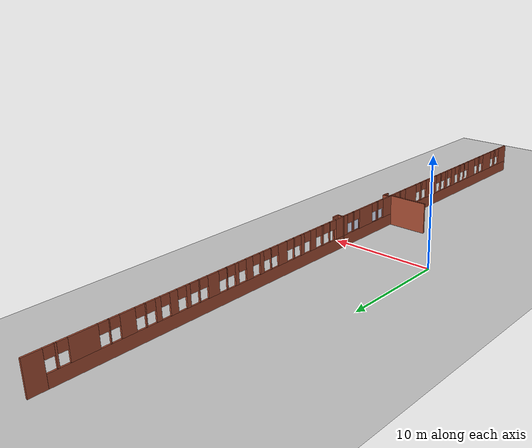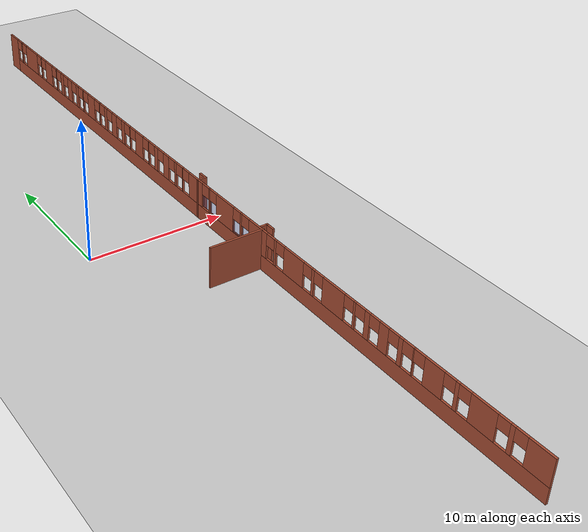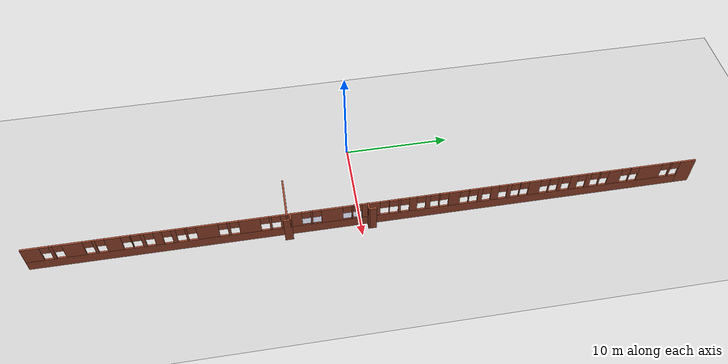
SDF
<sdf version="1.6">
 <world name="default">
  <model name="ground_plane">
   <static>1</static>
   <link name="link">
    <collision name="collision">
     <geometry><plane><normal>0 0 1</normal><size>100 100</size></plane></geometry>
     <surface><friction><ode><mu>100</mu><mu2>50</mu2></ode></friction></surface>
    </collision>
    <visual name="visual">
     <cast_shadows>0</cast_shadows>
     <geometry><plane><normal>0 0 1</normal><size>100 100</size></plane></geometry>
     <material>
      <script><uri>file://media/materials/scripts/gazebo.material</uri><name>Gazebo/Grey</name></script>
     </material>
    </visual>
   </link>
  </model>
  <model name="UNFRGS_INF_-_Predio_73">
   <pose>-0.02513 1.0401 -0.009 0 -0 0</pose>
   <link name="Wall_0">
    <pose>8.76787 -0.005219 0 0 0 -1.5708</pose>
    <visual name="Wall_0_Visual_0">
     <pose>-30.019 0 1.48 0 -0 0</pose>
     <geometry><box><size>1.47999 0.15 2.96</size></box></geometry>
     <material>
      <script><uri>file://media/materials/scripts/gazebo.material</uri><name>Gazebo/Bricks</name></script>
      <ambient>0.929412 1 0.760784 1</ambient>
     </material>
     <meta><layer>0</layer></meta>
    </visual>
    <collision name="Wall_0_Collision_0">
     <geometry><box><size>1.47999 0.15 2.96</size></box></geometry>
     <pose>-30.019 0 1.48 0 -0 0</pose>
    </collision>
    <visual name="Wall_0_Visual_1">
     <pose>0.739993 0 0.55 0 -0 0</pose>
     <geometry><box><size>60.038 0.15 1.11</size></box></geometry>
     <material>
      <script><uri>file://media/materials/scripts/gazebo.material</uri><name>Gazebo/Bricks</name></script>
      <ambient>0.929412 1 0.760784 1</ambient>
     </material>
     <meta><layer>0</layer></meta>
    </visual>
    <collision name="Wall_0_Collision_1">
     <geometry><box><size>60.038 0.15 1.11</size></box></geometry>
     <pose>0.739993 0 0.55 0 -0 0</pose>
    </collision>
    <visual name="Wall_0_Visual_2">
     <pose>-28.3968 0 2.03 0 -0 0</pose>
     <geometry><box><size>0.164493 0.15 1.86</size></box></geometry>
     <material>
      <script><uri>file://media/materials/scripts/gazebo.material</uri><name>Gazebo/Bricks</name></script>
      <ambient>0.929412 1 0.760784 1</ambient>
     </material>
     <meta><layer>0</layer></meta>
    </visual>
    <collision name="Wall_0_Collision_2">
     <geometry><box><size>0.164493 0.15 1.86</size></box></geometry>
     <pose>-28.3968 0 2.03 0 -0 0</pose>
    </collision>
    <visual name="Wall_0_Visual_3">
     <pose>-26.3939 0 2.03 0 -0 0</pose>
     <geometry><box><size>2.24127 0.15 1.86</size></box></geometry>
     <material>
      <script><uri>file://media/materials/scripts/gazebo.material</uri><name>Gazebo/Bricks</name></script>
      <ambient>0.929412 1 0.760784 1</ambient>
     </material>
     <meta><layer>0</layer></meta>
    </visual>
    <collision name="Wall_0_Collision_3">
     <geometry><box><size>2.24127 0.15 1.86</size></box></geometry>
     <pose>-26.3939 0 2.03 0 -0 0</pose>
    </collision>
    <visual name="Wall_0_Visual_4">
     <pose>-24.4354 0 2.03 0 -0 0</pose>
     <geometry><box><size>0.07574 0.15 1.86</size></box></geometry>
     <material>
      <script><uri>file://media/materials/scripts/gazebo.material</uri><name>Gazebo/Bricks</name></script>
      <ambient>0.929412 1 0.760784 1</ambient>
     </material>
     <meta><layer>0</layer></meta>
    </visual>
    <collision name="Wall_0_Collision_4">
     <geometry><box><size>0.07574 0.15 1.86</size></box></geometry>
     <pose>-24.4354 0 2.03 0 -0 0</pose>
    </collision>
    <visual name="Wall_0_Visual_5">
     <pose>-22.9721 0 2.03 0 -0 0</pose>
     <geometry><box><size>1.25079 0.15 1.86</size></box></geometry>
     <material>
      <script><uri>file://media/materials/scripts/gazebo.material</uri><name>Gazebo/Bricks</name></script>
      <ambient>0.929412 1 0.760784 1</ambient>
     </material>
     <meta><layer>0</layer></meta>
    </visual>
    <collision name="Wall_0_Collision_5">
     <geometry><box><size>1.25079 0.15 1.86</size></box></geometry>
     <pose>-22.9721 0 2.03 0 -0 0</pose>
    </collision>
    <visual name="Wall_0_Visual_6">
     <pose>-21.4946 0 2.03 0 -0 0</pose>
     <geometry><box><size>0.104211 0.15 1.86</size></box></geometry>
     <material>
      <script><uri>file://media/materials/scripts/gazebo.material</uri><name>Gazebo/Bricks</name></script>
      <ambient>0.929412 1 0.760784 1</ambient>
     </material>
     <meta><layer>0</layer></meta>
    </visual>
    <collision name="Wall_0_Collision_6">
     <geometry><box><size>0.104211 0.15 1.86</size></box></geometry>
     <pose>-21.4946 0 2.03 0 -0 0</pose>
    </collision>
    <visual name="Wall_0_Visual_7">
     <pose>-20.4096 0 2.03 0 -0 0</pose>
     <geometry><box><size>0.465896 0.15 1.86</size></box></geometry>
     <material>
      <script><uri>file://media/materials/scripts/gazebo.material</uri><name>Gazebo/Bricks</name></script>
      <ambient>0.929412 1 0.760784 1</ambient>
     </material>
     <meta><layer>0</layer></meta>
    </visual>
    <collision name="Wall_0_Collision_7">
     <geometry><box><size>0.465896 0.15 1.86</size></box></geometry>
     <pose>-20.4096 0 2.03 0 -0 0</pose>
    </collision>
    <visual name="Wall_0_Visual_8">
     <pose>-19.0231 0 2.03 0 -0 0</pose>
     <geometry><box><size>0.707017 0.15 1.86</size></box></geometry>
     <material>
      <script><uri>file://media/materials/scripts/gazebo.material</uri><name>Gazebo/Bricks</name></script>
      <ambient>0.929412 1 0.760784 1</ambient>
     </material>
     <meta><layer>0</layer></meta>
    </visual>
    <collision name="Wall_0_Collision_8">
     <geometry><box><size>0.707017 0.15 1.86</size></box></geometry>
     <pose>-19.0231 0 2.03 0 -0 0</pose>
    </collision>
    <visual name="Wall_0_Visual_9">
     <pose>-17.6819 0 2.03 0 -0 0</pose>
     <geometry><box><size>0.375476 0.15 1.86</size></box></geometry>
     <material>
      <script><uri>file://media/materials/scripts/gazebo.material</uri><name>Gazebo/Bricks</name></script>
      <ambient>0.929412 1 0.760784 1</ambient>
     </material>
     <meta><layer>0</layer></meta>
    </visual>
    <collision name="Wall_0_Collision_9">
     <geometry><box><size>0.375476 0.15 1.86</size></box></geometry>
     <pose>-17.6819 0 2.03 0 -0 0</pose>
    </collision>
    <visual name="Wall_0_Visual_10">
     <pose>-16.642 0 2.03 0 -0 0</pose>
     <geometry><box><size>0.104211 0.15 1.86</size></box></geometry>
     <material>
      <script><uri>file://media/materials/scripts/gazebo.material</uri><name>Gazebo/Bricks</name></script>
      <ambient>0.929412 1 0.760784 1</ambient>
     </material>
     <meta><layer>0</layer></meta>
    </visual>
    <collision name="Wall_0_Collision_10">
     <geometry><box><size>0.104211 0.15 1.86</size></box></geometry>
     <pose>-16.642 0 2.03 0 -0 0</pose>
    </collision>
    <visual name="Wall_0_Visual_11">
     <pose>-15.2405 0 2.03 0 -0 0</pose>
     <geometry><box><size>1.09884 0.15 1.86</size></box></geometry>
     <material>
      <script><uri>file://media/materials/scripts/gazebo.material</uri><name>Gazebo/Bricks</name></script>
      <ambient>0.929412 1 0.760784 1</ambient>
     </material>
     <meta><layer>0</layer></meta>
    </visual>
    <collision name="Wall_0_Collision_11">
     <geometry><box><size>1.09884 0.15 1.86</size></box></geometry>
     <pose>-15.2405 0 2.03 0 -0 0</pose>
    </collision>
    <visual name="Wall_0_Visual_12">
     <pose>-13.854 0 2.03 0 -0 0</pose>
     <geometry><box><size>0.07407 0.15 1.86</size></box></geometry>
     <material>
      <script><uri>file://media/materials/scripts/gazebo.material</uri><name>Gazebo/Bricks</name></script>
      <ambient>0.929412 1 0.760784 1</ambient>
     </material>
     <meta><layer>0</layer></meta>
    </visual>
    <collision name="Wall_0_Collision_12">
     <geometry><box><size>0.07407 0.15 1.86</size></box></geometry>
     <pose>-13.854 0 2.03 0 -0 0</pose>
    </collision>
    <visual name="Wall_0_Visual_13">
     <pose>-12.8293 0 2.03 0 -0 0</pose>
     <geometry><box><size>0.375475 0.15 1.86</size></box></geometry>
     <material>
      <script><uri>file://media/materials/scripts/gazebo.material</uri><name>Gazebo/Bricks</name></script>
      <ambient>0.929412 1 0.760784 1</ambient>
     </material>
     <meta><layer>0</layer></meta>
    </visual>
    <collision name="Wall_0_Collision_13">
     <geometry><box><size>0.375475 0.15 1.86</size></box></geometry>
     <pose>-12.8293 0 2.03 0 -0 0</pose>
    </collision>
    <visual name="Wall_0_Visual_14">
     <pose>-11.4729 0 2.03 0 -0 0</pose>
     <geometry><box><size>0.737159 0.15 1.86</size></box></geometry>
     <material>
      <script><uri>file://media/materials/scripts/gazebo.material</uri><name>Gazebo/Bricks</name></script>
      <ambient>0.929412 1 0.760784 1</ambient>
     </material>
     <meta><layer>0</layer></meta>
    </visual>
    <collision name="Wall_0_Collision_14">
     <geometry><box><size>0.737159 0.15 1.86</size></box></geometry>
     <pose>-11.4729 0 2.03 0 -0 0</pose>
    </collision>
    <visual name="Wall_0_Visual_15">
     <pose>-10.0865 0 2.03 0 -0 0</pose>
     <geometry><box><size>0.435756 0.15 1.86</size></box></geometry>
     <material>
      <script><uri>file://media/materials/scripts/gazebo.material</uri><name>Gazebo/Bricks</name></script>
      <ambient>0.929412 1 0.760784 1</ambient>
     </material>
     <meta><layer>0</layer></meta>
    </visual>
    <collision name="Wall_0_Collision_15">
     <geometry><box><size>0.435756 0.15 1.86</size></box></geometry>
     <pose>-10.0865 0 2.03 0 -0 0</pose>
    </collision>
    <visual name="Wall_0_Visual_16">
     <pose>-9.03157 0 2.03 0 -0 0</pose>
     <geometry><box><size>0.07407 0.15 1.86</size></box></geometry>
     <material>
      <script><uri>file://media/materials/scripts/gazebo.material</uri><name>Gazebo/Bricks</name></script>
      <ambient>0.929412 1 0.760784 1</ambient>
     </material>
     <meta><layer>0</layer></meta>
    </visual>
    <collision name="Wall_0_Collision_16">
     <geometry><box><size>0.07407 0.15 1.86</size></box></geometry>
     <pose>-9.03157 0 2.03 0 -0 0</pose>
    </collision>
    <visual name="Wall_0_Visual_17">
     <pose>-7.66018 0 2.03 0 -0 0</pose>
     <geometry><box><size>1.0687 0.15 1.86</size></box></geometry>
     <material>
      <script><uri>file://media/materials/scripts/gazebo.material</uri><name>Gazebo/Bricks</name></script>
      <ambient>0.929412 1 0.760784 1</ambient>
     </material>
     <meta><layer>0</layer></meta>
    </visual>
    <collision name="Wall_0_Collision_17">
     <geometry><box><size>1.0687 0.15 1.86</size></box></geometry>
     <pose>-7.66018 0 2.03 0 -0 0</pose>
    </collision>
    <visual name="Wall_0_Visual_18">
     <pose>-6.27372 0 2.03 0 -0 0</pose>
     <geometry><box><size>0.104212 0.15 1.86</size></box></geometry>
     <material>
      <script><uri>file://media/materials/scripts/gazebo.material</uri><name>Gazebo/Bricks</name></script>
      <ambient>0.929412 1 0.760784 1</ambient>
     </material>
     <meta><layer>0</layer></meta>
    </visual>
    <collision name="Wall_0_Collision_18">
     <geometry><box><size>0.104212 0.15 1.86</size></box></geometry>
     <pose>-6.27372 0 2.03 0 -0 0</pose>
    </collision>
    <visual name="Wall_0_Visual_19">
     <pose>-5.20374 0 2.03 0 -0 0</pose>
     <geometry><box><size>0.435755 0.15 1.86</size></box></geometry>
     <material>
      <script><uri>file://media/materials/scripts/gazebo.material</uri><name>Gazebo/Bricks</name></script>
      <ambient>0.929412 1 0.760784 1</ambient>
     </material>
     <meta><layer>0</layer></meta>
    </visual>
    <collision name="Wall_0_Collision_19">
     <geometry><box><size>0.435755 0.15 1.86</size></box></geometry>
     <pose>-5.20374 0 2.03 0 -0 0</pose>
    </collision>
    <visual name="Wall_0_Visual_20">
     <pose>-3.83235 0 2.03 0 -0 0</pose>
     <geometry><box><size>0.707019 0.15 1.86</size></box></geometry>
     <material>
      <script><uri>file://media/materials/scripts/gazebo.material</uri><name>Gazebo/Bricks</name></script>
      <ambient>0.929412 1 0.760784 1</ambient>
     </material>
     <meta><layer>0</layer></meta>
    </visual>
    <collision name="Wall_0_Collision_20">
     <geometry><box><size>0.707019 0.15 1.86</size></box></geometry>
     <pose>-3.83235 0 2.03 0 -0 0</pose>
    </collision>
    <visual name="Wall_0_Visual_21">
     <pose>-2.56646 0 2.03 0 -0 0</pose>
     <geometry><box><size>0.224773 0.15 1.86</size></box></geometry>
     <material>
      <script><uri>file://media/materials/scripts/gazebo.material</uri><name>Gazebo/Bricks</name></script>
      <ambient>0.929412 1 0.760784 1</ambient>
     </material>
     <meta><layer>0</layer></meta>
    </visual>
    <collision name="Wall_0_Collision_21">
     <geometry><box><size>0.224773 0.15 1.86</size></box></geometry>
     <pose>-2.56646 0 2.03 0 -0 0</pose>
    </collision>
    <visual name="Wall_0_Visual_22">
     <pose>-1.61704 0 2.03 0 -0 0</pose>
     <geometry><box><size>0.074071 0.15 1.86</size></box></geometry>
     <material>
      <script><uri>file://media/materials/scripts/gazebo.material</uri><name>Gazebo/Bricks</name></script>
      <ambient>0.929412 1 0.760784 1</ambient>
     </material>
     <meta><layer>0</layer></meta>
    </visual>
    <collision name="Wall_0_Collision_22">
     <geometry><box><size>0.074071 0.15 1.86</size></box></geometry>
     <pose>-1.61704 0 2.03 0 -0 0</pose>
    </collision>
    <visual name="Wall_0_Visual_23">
     <pose>0.055756 0 2.03 0 -0 0</pose>
     <geometry><box><size>1.67151 0.15 1.86</size></box></geometry>
     <material>
      <script><uri>file://media/materials/scripts/gazebo.material</uri><name>Gazebo/Bricks</name></script>
      <ambient>0.929412 1 0.760784 1</ambient>
     </material>
     <meta><layer>0</layer></meta>
    </visual>
    <collision name="Wall_0_Collision_23">
     <geometry><box><size>1.67151 0.15 1.86</size></box></geometry>
     <pose>0.055756 0 2.03 0 -0 0</pose>
    </collision>
    <visual name="Wall_0_Visual_24">
     <pose>1.75869 0 2.03 0 -0 0</pose>
     <geometry><box><size>0.134352 0.15 1.86</size></box></geometry>
     <material>
      <script><uri>file://media/materials/scripts/gazebo.material</uri><name>Gazebo/Bricks</name></script>
      <ambient>0.929412 1 0.760784 1</ambient>
     </material>
     <meta><layer>0</layer></meta>
    </visual>
    <collision name="Wall_0_Collision_24">
     <geometry><box><size>0.134352 0.15 1.86</size></box></geometry>
     <pose>1.75869 0 2.03 0 -0 0</pose>
    </collision>
    <visual name="Wall_0_Visual_25">
     <pose>3.59725 0 2.03 0 -0 0</pose>
     <geometry><box><size>1.94277 0.15 1.86</size></box></geometry>
     <material>
      <script><uri>file://media/materials/scripts/gazebo.material</uri><name>Gazebo/Bricks</name></script>
      <ambient>0.929412 1 0.760784 1</ambient>
     </material>
     <meta><layer>0</layer></meta>
    </visual>
    <collision name="Wall_0_Collision_25">
     <geometry><box><size>1.94277 0.15 1.86</size></box></geometry>
     <pose>3.59725 0 2.03 0 -0 0</pose>
    </collision>
    <visual name="Wall_0_Visual_26">
     <pose>5.45088 0 2.03 0 -0 0</pose>
     <geometry><box><size>0.164492 0.15 1.86</size></box></geometry>
     <material>
      <script><uri>file://media/materials/scripts/gazebo.material</uri><name>Gazebo/Bricks</name></script>
      <ambient>0.929412 1 0.760784 1</ambient>
     </material>
     <meta><layer>0</layer></meta>
    </visual>
    <collision name="Wall_0_Collision_26">
     <geometry><box><size>0.164492 0.15 1.86</size></box></geometry>
     <pose>5.45088 0 2.03 0 -0 0</pose>
    </collision>
    <visual name="Wall_0_Visual_27">
     <pose>7.28945 0 2.03 0 -0 0</pose>
     <geometry><box><size>1.91263 0.15 1.86</size></box></geometry>
     <material>
      <script><uri>file://media/materials/scripts/gazebo.material</uri><name>Gazebo/Bricks</name></script>
      <ambient>0.929412 1 0.760784 1</ambient>
     </material>
     <meta><layer>0</layer></meta>
    </visual>
    <collision name="Wall_0_Collision_27">
     <geometry><box><size>1.91263 0.15 1.86</size></box></geometry>
     <pose>7.28945 0 2.03 0 -0 0</pose>
    </collision>
    <visual name="Wall_0_Visual_28">
     <pose>9.14308 0 2.03 0 -0 0</pose>
     <geometry><box><size>0.194632 0.15 1.86</size></box></geometry>
     <material>
      <script><uri>file://media/materials/scripts/gazebo.material</uri><name>Gazebo/Bricks</name></script>
      <ambient>0.929412 1 0.760784 1</ambient>
     </material>
     <meta><layer>0</layer></meta>
    </visual>
    <collision name="Wall_0_Collision_28">
     <geometry><box><size>0.194632 0.15 1.86</size></box></geometry>
     <pose>9.14308 0 2.03 0 -0 0</pose>
    </collision>
    <visual name="Wall_0_Visual_29">
     <pose>10.9967 0 2.03 0 -0 0</pose>
     <geometry><box><size>1.91263 0.15 1.86</size></box></geometry>
     <material>
      <script><uri>file://media/materials/scripts/gazebo.material</uri><name>Gazebo/Bricks</name></script>
      <ambient>0.929412 1 0.760784 1</ambient>
     </material>
     <meta><layer>0</layer></meta>
    </visual>
    <collision name="Wall_0_Collision_29">
     <geometry><box><size>1.91263 0.15 1.86</size></box></geometry>
     <pose>10.9967 0 2.03 0 -0 0</pose>
    </collision>
    <visual name="Wall_0_Visual_30">
     <pose>12.8654 0 2.03 0 -0 0</pose>
     <geometry><box><size>0.224773 0.15 1.86</size></box></geometry>
     <material>
      <script><uri>file://media/materials/scripts/gazebo.material</uri><name>Gazebo/Bricks</name></script>
      <ambient>0.929412 1 0.760784 1</ambient>
     </material>
     <meta><layer>0</layer></meta>
    </visual>
    <collision name="Wall_0_Collision_30">
     <geometry><box><size>0.224773 0.15 1.86</size></box></geometry>
     <pose>12.8654 0 2.03 0 -0 0</pose>
    </collision>
    <visual name="Wall_0_Visual_31">
     <pose>14.7492 0 2.03 0 -0 0</pose>
     <geometry><box><size>1.94277 0.15 1.86</size></box></geometry>
     <material>
      <script><uri>file://media/materials/scripts/gazebo.material</uri><name>Gazebo/Bricks</name></script>
      <ambient>0.929412 1 0.760784 1</ambient>
     </material>
     <meta><layer>0</layer></meta>
    </visual>
    <collision name="Wall_0_Collision_31">
     <geometry><box><size>1.94277 0.15 1.86</size></box></geometry>
     <pose>14.7492 0 2.03 0 -0 0</pose>
    </collision>
    <visual name="Wall_0_Visual_32">
     <pose>16.6028 0 2.03 0 -0 0</pose>
     <geometry><box><size>0.164493 0.15 1.86</size></box></geometry>
     <material>
      <script><uri>file://media/materials/scripts/gazebo.material</uri><name>Gazebo/Bricks</name></script>
      <ambient>0.929412 1 0.760784 1</ambient>
     </material>
     <meta><layer>0</layer></meta>
    </visual>
    <collision name="Wall_0_Collision_32">
     <geometry><box><size>0.164493 0.15 1.86</size></box></geometry>
     <pose>16.6028 0 2.03 0 -0 0</pose>
    </collision>
    <visual name="Wall_0_Visual_33">
     <pose>17.6879 0 2.03 0 -0 0</pose>
     <geometry><box><size>0.405614 0.15 1.86</size></box></geometry>
     <material>
      <script><uri>file://media/materials/scripts/gazebo.material</uri><name>Gazebo/Bricks</name></script>
      <ambient>0.929412 1 0.760784 1</ambient>
     </material>
     <meta><layer>0</layer></meta>
    </visual>
    <collision name="Wall_0_Collision_33">
     <geometry><box><size>0.405614 0.15 1.86</size></box></geometry>
     <pose>17.6879 0 2.03 0 -0 0</pose>
    </collision>
    <visual name="Wall_0_Visual_34">
     <pose>19.0593 0 2.03 0 -0 0</pose>
     <geometry><box><size>0.737159 0.15 1.86</size></box></geometry>
     <material>
      <script><uri>file://media/materials/scripts/gazebo.material</uri><name>Gazebo/Bricks</name></script>
      <ambient>0.929412 1 0.760784 1</ambient>
     </material>
     <meta><layer>0</layer></meta>
    </visual>
    <collision name="Wall_0_Collision_34">
     <geometry><box><size>0.737159 0.15 1.86</size></box></geometry>
     <pose>19.0593 0 2.03 0 -0 0</pose>
    </collision>
    <visual name="Wall_0_Visual_35">
     <pose>20.3854 0 2.03 0 -0 0</pose>
     <geometry><box><size>0.315194 0.15 1.86</size></box></geometry>
     <material>
      <script><uri>file://media/materials/scripts/gazebo.material</uri><name>Gazebo/Bricks</name></script>
      <ambient>0.929412 1 0.760784 1</ambient>
     </material>
     <meta><layer>0</layer></meta>
    </visual>
    <collision name="Wall_0_Collision_35">
     <geometry><box><size>0.315194 0.15 1.86</size></box></geometry>
     <pose>20.3854 0 2.03 0 -0 0</pose>
    </collision>
    <visual name="Wall_0_Visual_36">
     <pose>21.3801 0 2.03 0 -0 0</pose>
     <geometry><box><size>0.074071 0.15 1.86</size></box></geometry>
     <material>
      <script><uri>file://media/materials/scripts/gazebo.material</uri><name>Gazebo/Bricks</name></script>
      <ambient>0.929412 1 0.760784 1</ambient>
     </material>
     <meta><layer>0</layer></meta>
    </visual>
    <collision name="Wall_0_Collision_36">
     <geometry><box><size>0.074071 0.15 1.86</size></box></geometry>
     <pose>21.3801 0 2.03 0 -0 0</pose>
    </collision>
    <visual name="Wall_0_Visual_37">
     <pose>22.9172 0 2.03 0 -0 0</pose>
     <geometry><box><size>1.40025 0.15 1.86</size></box></geometry>
     <material>
      <script><uri>file://media/materials/scripts/gazebo.material</uri><name>Gazebo/Bricks</name></script>
      <ambient>0.929412 1 0.760784 1</ambient>
     </material>
     <meta><layer>0</layer></meta>
    </visual>
    <collision name="Wall_0_Collision_37">
     <geometry><box><size>1.40025 0.15 1.86</size></box></geometry>
     <pose>22.9172 0 2.03 0 -0 0</pose>
    </collision>
    <visual name="Wall_0_Visual_38">
     <pose>24.5448 0 2.03 0 -0 0</pose>
     <geometry><box><size>0.254914 0.15 1.86</size></box></geometry>
     <material>
      <script><uri>file://media/materials/scripts/gazebo.material</uri><name>Gazebo/Bricks</name></script>
      <ambient>0.929412 1 0.760784 1</ambient>
     </material>
     <meta><layer>0</layer></meta>
    </visual>
    <collision name="Wall_0_Collision_38">
     <geometry><box><size>0.254914 0.15 1.86</size></box></geometry>
     <pose>24.5448 0 2.03 0 -0 0</pose>
    </collision>
    <visual name="Wall_0_Visual_39">
     <pose>26.3532 0 2.03 0 -0 0</pose>
     <geometry><box><size>1.76193 0.15 1.86</size></box></geometry>
     <material>
      <script><uri>file://media/materials/scripts/gazebo.material</uri><name>Gazebo/Bricks</name></script>
      <ambient>0.929412 1 0.760784 1</ambient>
     </material>
     <meta><layer>0</layer></meta>
    </visual>
    <collision name="Wall_0_Collision_39">
     <geometry><box><size>1.76193 0.15 1.86</size></box></geometry>
     <pose>26.3532 0 2.03 0 -0 0</pose>
    </collision>
    <visual name="Wall_0_Visual_40">
     <pose>28.1767 0 2.03 0 -0 0</pose>
     <geometry><box><size>0.285052 0.15 1.86</size></box></geometry>
     <material>
      <script><uri>file://media/materials/scripts/gazebo.material</uri><name>Gazebo/Bricks</name></script>
      <ambient>0.929412 1 0.760784 1</ambient>
     </material>
     <meta><layer>0</layer></meta>
    </visual>
    <collision name="Wall_0_Collision_40">
     <geometry><box><size>0.285052 0.15 1.86</size></box></geometry>
     <pose>28.1767 0 2.03 0 -0 0</pose>
    </collision>
    <visual name="Wall_0_Visual_41">
     <pose>29.9391 0 2.03 0 -0 0</pose>
     <geometry><box><size>1.63974 0.15 1.86</size></box></geometry>
     <material>
      <script><uri>file://media/materials/scripts/gazebo.material</uri><name>Gazebo/Bricks</name></script>
      <ambient>0.929412 1 0.760784 1</ambient>
     </material>
     <meta><layer>0</layer></meta>
    </visual>
    <collision name="Wall_0_Collision_41">
     <geometry><box><size>1.63974 0.15 1.86</size></box></geometry>
     <pose>29.9391 0 2.03 0 -0 0</pose>
    </collision>
    <visual name="Wall_0_Visual_42">
     <pose>-28.879 0 2.53 0 -0 0</pose>
     <geometry><box><size>0.8 0.15 0.86</size></box></geometry>
     <material>
      <script><uri>file://media/materials/scripts/gazebo.material</uri><name>Gazebo/Bricks</name></script>
      <ambient>0.929412 1 0.760784 1</ambient>
     </material>
     <meta><layer>0</layer></meta>
    </visual>
    <collision name="Wall_0_Collision_42">
     <geometry><box><size>0.8 0.15 0.86</size></box></geometry>
     <pose>-28.879 0 2.53 0 -0 0</pose>
    </collision>
    <visual name="Wall_0_Visual_43">
     <pose>-27.9145 0 2.53 0 -0 0</pose>
     <geometry><box><size>0.8 0.15 0.86</size></box></geometry>
     <material>
      <script><uri>file://media/materials/scripts/gazebo.material</uri><name>Gazebo/Bricks</name></script>
      <ambient>0.929412 1 0.760784 1</ambient>
     </material>
     <meta><layer>0</layer></meta>
    </visual>
    <collision name="Wall_0_Collision_43">
     <geometry><box><size>0.8 0.15 0.86</size></box></geometry>
     <pose>-27.9145 0 2.53 0 -0 0</pose>
    </collision>
    <visual name="Wall_0_Visual_44">
     <pose>-24.8732 0 2.53 0 -0 0</pose>
     <geometry><box><size>0.8 0.15 0.86</size></box></geometry>
     <material>
      <script><uri>file://media/materials/scripts/gazebo.material</uri><name>Gazebo/Bricks</name></script>
      <ambient>0.929412 1 0.760784 1</ambient>
     </material>
     <meta><layer>0</layer></meta>
    </visual>
    <collision name="Wall_0_Collision_44">
     <geometry><box><size>0.8 0.15 0.86</size></box></geometry>
     <pose>-24.8732 0 2.53 0 -0 0</pose>
    </collision>
    <visual name="Wall_0_Visual_45">
     <pose>-23.9975 0 2.53 0 -0 0</pose>
     <geometry><box><size>0.8 0.15 0.86</size></box></geometry>
     <material>
      <script><uri>file://media/materials/scripts/gazebo.material</uri><name>Gazebo/Bricks</name></script>
      <ambient>0.929412 1 0.760784 1</ambient>
     </material>
     <meta><layer>0</layer></meta>
    </visual>
    <collision name="Wall_0_Collision_45">
     <geometry><box><size>0.8 0.15 0.86</size></box></geometry>
     <pose>-23.9975 0 2.53 0 -0 0</pose>
    </collision>
    <visual name="Wall_0_Visual_46">
     <pose>-21.9467 0 2.53 0 -0 0</pose>
     <geometry><box><size>0.8 0.15 0.86</size></box></geometry>
     <material>
      <script><uri>file://media/materials/scripts/gazebo.material</uri><name>Gazebo/Bricks</name></script>
      <ambient>0.929412 1 0.760784 1</ambient>
     </material>
     <meta><layer>0</layer></meta>
    </visual>
    <collision name="Wall_0_Collision_46">
     <geometry><box><size>0.8 0.15 0.86</size></box></geometry>
     <pose>-21.9467 0 2.53 0 -0 0</pose>
    </collision>
    <visual name="Wall_0_Visual_47">
     <pose>-21.0425 0 2.53 0 -0 0</pose>
     <geometry><box><size>0.8 0.15 0.86</size></box></geometry>
     <material>
      <script><uri>file://media/materials/scripts/gazebo.material</uri><name>Gazebo/Bricks</name></script>
      <ambient>0.929412 1 0.760784 1</ambient>
     </material>
     <meta><layer>0</layer></meta>
    </visual>
    <collision name="Wall_0_Collision_47">
     <geometry><box><size>0.8 0.15 0.86</size></box></geometry>
     <pose>-21.0425 0 2.53 0 -0 0</pose>
    </collision>
    <visual name="Wall_0_Visual_48">
     <pose>-19.7766 0 2.53 0 -0 0</pose>
     <geometry><box><size>0.8 0.15 0.86</size></box></geometry>
     <material>
      <script><uri>file://media/materials/scripts/gazebo.material</uri><name>Gazebo/Bricks</name></script>
      <ambient>0.929412 1 0.760784 1</ambient>
     </material>
     <meta><layer>0</layer></meta>
    </visual>
    <collision name="Wall_0_Collision_48">
     <geometry><box><size>0.8 0.15 0.86</size></box></geometry>
     <pose>-19.7766 0 2.53 0 -0 0</pose>
    </collision>
    <visual name="Wall_0_Visual_49">
     <pose>-18.2696 0 2.53 0 -0 0</pose>
     <geometry><box><size>0.8 0.15 0.86</size></box></geometry>
     <material>
      <script><uri>file://media/materials/scripts/gazebo.material</uri><name>Gazebo/Bricks</name></script>
      <ambient>0.929412 1 0.760784 1</ambient>
     </material>
     <meta><layer>0</layer></meta>
    </visual>
    <collision name="Wall_0_Collision_49">
     <geometry><box><size>0.8 0.15 0.86</size></box></geometry>
     <pose>-18.2696 0 2.53 0 -0 0</pose>
    </collision>
    <visual name="Wall_0_Visual_50">
     <pose>-17.0941 0 2.53 0 -0 0</pose>
     <geometry><box><size>0.8 0.15 0.86</size></box></geometry>
     <material>
      <script><uri>file://media/materials/scripts/gazebo.material</uri><name>Gazebo/Bricks</name></script>
      <ambient>0.929412 1 0.760784 1</ambient>
     </material>
     <meta><layer>0</layer></meta>
    </visual>
    <collision name="Wall_0_Collision_50">
     <geometry><box><size>0.8 0.15 0.86</size></box></geometry>
     <pose>-17.0941 0 2.53 0 -0 0</pose>
    </collision>
    <visual name="Wall_0_Visual_51">
     <pose>-16.1899 0 2.53 0 -0 0</pose>
     <geometry><box><size>0.8 0.15 0.86</size></box></geometry>
     <material>
      <script><uri>file://media/materials/scripts/gazebo.material</uri><name>Gazebo/Bricks</name></script>
      <ambient>0.929412 1 0.760784 1</ambient>
     </material>
     <meta><layer>0</layer></meta>
    </visual>
    <collision name="Wall_0_Collision_51">
     <geometry><box><size>0.8 0.15 0.86</size></box></geometry>
     <pose>-16.1899 0 2.53 0 -0 0</pose>
    </collision>
    <visual name="Wall_0_Visual_52">
     <pose>-14.2911 0 2.53 0 -0 0</pose>
     <geometry><box><size>0.8 0.15 0.86</size></box></geometry>
     <material>
      <script><uri>file://media/materials/scripts/gazebo.material</uri><name>Gazebo/Bricks</name></script>
      <ambient>0.929412 1 0.760784 1</ambient>
     </material>
     <meta><layer>0</layer></meta>
    </visual>
    <collision name="Wall_0_Collision_52">
     <geometry><box><size>0.8 0.15 0.86</size></box></geometry>
     <pose>-14.2911 0 2.53 0 -0 0</pose>
    </collision>
    <visual name="Wall_0_Visual_53">
     <pose>-13.417 0 2.53 0 -0 0</pose>
     <geometry><box><size>0.8 0.15 0.86</size></box></geometry>
     <material>
      <script><uri>file://media/materials/scripts/gazebo.material</uri><name>Gazebo/Bricks</name></script>
      <ambient>0.929412 1 0.760784 1</ambient>
     </material>
     <meta><layer>0</layer></meta>
    </visual>
    <collision name="Wall_0_Collision_53">
     <geometry><box><size>0.8 0.15 0.86</size></box></geometry>
     <pose>-13.417 0 2.53 0 -0 0</pose>
    </collision>
    <visual name="Wall_0_Visual_54">
     <pose>-12.2415 0 2.53 0 -0 0</pose>
     <geometry><box><size>0.8 0.15 0.86</size></box></geometry>
     <material>
      <script><uri>file://media/materials/scripts/gazebo.material</uri><name>Gazebo/Bricks</name></script>
      <ambient>0.929412 1 0.760784 1</ambient>
     </material>
     <meta><layer>0</layer></meta>
    </visual>
    <collision name="Wall_0_Collision_54">
     <geometry><box><size>0.8 0.15 0.86</size></box></geometry>
     <pose>-12.2415 0 2.53 0 -0 0</pose>
    </collision>
    <visual name="Wall_0_Visual_55">
     <pose>-10.7044 0 2.53 0 -0 0</pose>
     <geometry><box><size>0.8 0.15 0.86</size></box></geometry>
     <material>
      <script><uri>file://media/materials/scripts/gazebo.material</uri><name>Gazebo/Bricks</name></script>
      <ambient>0.929412 1 0.760784 1</ambient>
     </material>
     <meta><layer>0</layer></meta>
    </visual>
    <collision name="Wall_0_Collision_55">
     <geometry><box><size>0.8 0.15 0.86</size></box></geometry>
     <pose>-10.7044 0 2.53 0 -0 0</pose>
    </collision>
    <visual name="Wall_0_Visual_56">
     <pose>-9.4686 0 2.53 0 -0 0</pose>
     <geometry><box><size>0.8 0.15 0.86</size></box></geometry>
     <material>
      <script><uri>file://media/materials/scripts/gazebo.material</uri><name>Gazebo/Bricks</name></script>
      <ambient>0.929412 1 0.760784 1</ambient>
     </material>
     <meta><layer>0</layer></meta>
    </visual>
    <collision name="Wall_0_Collision_56">
     <geometry><box><size>0.8 0.15 0.86</size></box></geometry>
     <pose>-9.4686 0 2.53 0 -0 0</pose>
    </collision>
    <visual name="Wall_0_Visual_57">
     <pose>-8.59453 0 2.53 0 -0 0</pose>
     <geometry><box><size>0.8 0.15 0.86</size></box></geometry>
     <material>
      <script><uri>file://media/materials/scripts/gazebo.material</uri><name>Gazebo/Bricks</name></script>
      <ambient>0.929412 1 0.760784 1</ambient>
     </material>
     <meta><layer>0</layer></meta>
    </visual>
    <collision name="Wall_0_Collision_57">
     <geometry><box><size>0.8 0.15 0.86</size></box></geometry>
     <pose>-8.59453 0 2.53 0 -0 0</pose>
    </collision>
    <visual name="Wall_0_Visual_58">
     <pose>-6.72583 0 2.53 0 -0 0</pose>
     <geometry><box><size>0.8 0.15 0.86</size></box></geometry>
     <material>
      <script><uri>file://media/materials/scripts/gazebo.material</uri><name>Gazebo/Bricks</name></script>
      <ambient>0.929412 1 0.760784 1</ambient>
     </material>
     <meta><layer>0</layer></meta>
    </visual>
    <collision name="Wall_0_Collision_58">
     <geometry><box><size>0.8 0.15 0.86</size></box></geometry>
     <pose>-6.72583 0 2.53 0 -0 0</pose>
    </collision>
    <visual name="Wall_0_Visual_59">
     <pose>-5.82162 0 2.53 0 -0 0</pose>
     <geometry><box><size>0.8 0.15 0.86</size></box></geometry>
     <material>
      <script><uri>file://media/materials/scripts/gazebo.material</uri><name>Gazebo/Bricks</name></script>
      <ambient>0.929412 1 0.760784 1</ambient>
     </material>
     <meta><layer>0</layer></meta>
    </visual>
    <collision name="Wall_0_Collision_59">
     <geometry><box><size>0.8 0.15 0.86</size></box></geometry>
     <pose>-5.82162 0 2.53 0 -0 0</pose>
    </collision>
    <visual name="Wall_0_Visual_60">
     <pose>-4.58586 0 2.53 0 -0 0</pose>
     <geometry><box><size>0.8 0.15 0.86</size></box></geometry>
     <material>
      <script><uri>file://media/materials/scripts/gazebo.material</uri><name>Gazebo/Bricks</name></script>
      <ambient>0.929412 1 0.760784 1</ambient>
     </material>
     <meta><layer>0</layer></meta>
    </visual>
    <collision name="Wall_0_Collision_60">
     <geometry><box><size>0.8 0.15 0.86</size></box></geometry>
     <pose>-4.58586 0 2.53 0 -0 0</pose>
    </collision>
    <visual name="Wall_0_Visual_61">
     <pose>-3.07884 0 2.53 0 -0 0</pose>
     <geometry><box><size>0.8 0.15 0.86</size></box></geometry>
     <material>
      <script><uri>file://media/materials/scripts/gazebo.material</uri><name>Gazebo/Bricks</name></script>
      <ambient>0.929412 1 0.760784 1</ambient>
     </material>
     <meta><layer>0</layer></meta>
    </visual>
    <collision name="Wall_0_Collision_61">
     <geometry><box><size>0.8 0.15 0.86</size></box></geometry>
     <pose>-3.07884 0 2.53 0 -0 0</pose>
    </collision>
    <visual name="Wall_0_Visual_62">
     <pose>-2.05407 0 2.53 0 -0 0</pose>
     <geometry><box><size>0.8 0.15 0.86</size></box></geometry>
     <material>
      <script><uri>file://media/materials/scripts/gazebo.material</uri><name>Gazebo/Bricks</name></script>
      <ambient>0.929412 1 0.760784 1</ambient>
     </material>
     <meta><layer>0</layer></meta>
    </visual>
    <collision name="Wall_0_Collision_62">
     <geometry><box><size>0.8 0.15 0.86</size></box></geometry>
     <pose>-2.05407 0 2.53 0 -0 0</pose>
    </collision>
    <visual name="Wall_0_Visual_63">
     <pose>-1.18 0 2.53 0 -0 0</pose>
     <geometry><box><size>0.8 0.15 0.86</size></box></geometry>
     <material>
      <script><uri>file://media/materials/scripts/gazebo.material</uri><name>Gazebo/Bricks</name></script>
      <ambient>0.929412 1 0.760784 1</ambient>
     </material>
     <meta><layer>0</layer></meta>
    </visual>
    <collision name="Wall_0_Collision_63">
     <geometry><box><size>0.8 0.15 0.86</size></box></geometry>
     <pose>-1.18 0 2.53 0 -0 0</pose>
    </collision>
    <visual name="Wall_0_Visual_64">
     <pose>1.29151 0 2.53 0 -0 0</pose>
     <geometry><box><size>0.8 0.15 0.86</size></box></geometry>
     <material>
      <script><uri>file://media/materials/scripts/gazebo.material</uri><name>Gazebo/Bricks</name></script>
      <ambient>0.929412 1 0.760784 1</ambient>
     </material>
     <meta><layer>0</layer></meta>
    </visual>
    <collision name="Wall_0_Collision_64">
     <geometry><box><size>0.8 0.15 0.86</size></box></geometry>
     <pose>1.29151 0 2.53 0 -0 0</pose>
    </collision>
    <visual name="Wall_0_Visual_65">
     <pose>2.22586 0 2.53 0 -0 0</pose>
     <geometry><box><size>0.8 0.15 0.86</size></box></geometry>
     <material>
      <script><uri>file://media/materials/scripts/gazebo.material</uri><name>Gazebo/Bricks</name></script>
      <ambient>0.929412 1 0.760784 1</ambient>
     </material>
     <meta><layer>0</layer></meta>
    </visual>
    <collision name="Wall_0_Collision_65">
     <geometry><box><size>0.8 0.15 0.86</size></box></geometry>
     <pose>2.22586 0 2.53 0 -0 0</pose>
    </collision>
    <visual name="Wall_0_Visual_66">
     <pose>4.96864 0 2.53 0 -0 0</pose>
     <geometry><box><size>0.8 0.15 0.86</size></box></geometry>
     <material>
      <script><uri>file://media/materials/scripts/gazebo.material</uri><name>Gazebo/Bricks</name></script>
      <ambient>0.929412 1 0.760784 1</ambient>
     </material>
     <meta><layer>0</layer></meta>
    </visual>
    <collision name="Wall_0_Collision_66">
     <geometry><box><size>0.8 0.15 0.86</size></box></geometry>
     <pose>4.96864 0 2.53 0 -0 0</pose>
    </collision>
    <visual name="Wall_0_Visual_67">
     <pose>5.93313 0 2.53 0 -0 0</pose>
     <geometry><box><size>0.8 0.15 0.86</size></box></geometry>
     <material>
      <script><uri>file://media/materials/scripts/gazebo.material</uri><name>Gazebo/Bricks</name></script>
      <ambient>0.929412 1 0.760784 1</ambient>
     </material>
     <meta><layer>0</layer></meta>
    </visual>
    <collision name="Wall_0_Collision_67">
     <geometry><box><size>0.8 0.15 0.86</size></box></geometry>
     <pose>5.93313 0 2.53 0 -0 0</pose>
    </collision>
    <visual name="Wall_0_Visual_68">
     <pose>8.64576 0 2.53 0 -0 0</pose>
     <geometry><box><size>0.8 0.15 0.86</size></box></geometry>
     <material>
      <script><uri>file://media/materials/scripts/gazebo.material</uri><name>Gazebo/Bricks</name></script>
      <ambient>0.929412 1 0.760784 1</ambient>
     </material>
     <meta><layer>0</layer></meta>
    </visual>
    <collision name="Wall_0_Collision_68">
     <geometry><box><size>0.8 0.15 0.86</size></box></geometry>
     <pose>8.64576 0 2.53 0 -0 0</pose>
    </collision>
    <visual name="Wall_0_Visual_69">
     <pose>9.64039 0 2.53 0 -0 0</pose>
     <geometry><box><size>0.8 0.15 0.86</size></box></geometry>
     <material>
      <script><uri>file://media/materials/scripts/gazebo.material</uri><name>Gazebo/Bricks</name></script>
      <ambient>0.929412 1 0.760784 1</ambient>
     </material>
     <meta><layer>0</layer></meta>
    </visual>
    <collision name="Wall_0_Collision_69">
     <geometry><box><size>0.8 0.15 0.86</size></box></geometry>
     <pose>9.64039 0 2.53 0 -0 0</pose>
    </collision>
    <visual name="Wall_0_Visual_70">
     <pose>12.353 0 2.53 0 -0 0</pose>
     <geometry><box><size>0.8 0.15 0.86</size></box></geometry>
     <material>
      <script><uri>file://media/materials/scripts/gazebo.material</uri><name>Gazebo/Bricks</name></script>
      <ambient>0.929412 1 0.760784 1</ambient>
     </material>
     <meta><layer>0</layer></meta>
    </visual>
    <collision name="Wall_0_Collision_70">
     <geometry><box><size>0.8 0.15 0.86</size></box></geometry>
     <pose>12.353 0 2.53 0 -0 0</pose>
    </collision>
    <visual name="Wall_0_Visual_71">
     <pose>13.3778 0 2.53 0 -0 0</pose>
     <geometry><box><size>0.8 0.15 0.86</size></box></geometry>
     <material>
      <script><uri>file://media/materials/scripts/gazebo.material</uri><name>Gazebo/Bricks</name></script>
      <ambient>0.929412 1 0.760784 1</ambient>
     </material>
     <meta><layer>0</layer></meta>
    </visual>
    <collision name="Wall_0_Collision_71">
     <geometry><box><size>0.8 0.15 0.86</size></box></geometry>
     <pose>13.3778 0 2.53 0 -0 0</pose>
    </collision>
    <visual name="Wall_0_Visual_72">
     <pose>16.1206 0 2.53 0 -0 0</pose>
     <geometry><box><size>0.8 0.15 0.86</size></box></geometry>
     <material>
      <script><uri>file://media/materials/scripts/gazebo.material</uri><name>Gazebo/Bricks</name></script>
      <ambient>0.929412 1 0.760784 1</ambient>
     </material>
     <meta><layer>0</layer></meta>
    </visual>
    <collision name="Wall_0_Collision_72">
     <geometry><box><size>0.8 0.15 0.86</size></box></geometry>
     <pose>16.1206 0 2.53 0 -0 0</pose>
    </collision>
    <visual name="Wall_0_Visual_73">
     <pose>17.0851 0 2.53 0 -0 0</pose>
     <geometry><box><size>0.8 0.15 0.86</size></box></geometry>
     <material>
      <script><uri>file://media/materials/scripts/gazebo.material</uri><name>Gazebo/Bricks</name></script>
      <ambient>0.929412 1 0.760784 1</ambient>
     </material>
     <meta><layer>0</layer></meta>
    </visual>
    <collision name="Wall_0_Collision_73">
     <geometry><box><size>0.8 0.15 0.86</size></box></geometry>
     <pose>17.0851 0 2.53 0 -0 0</pose>
    </collision>
    <visual name="Wall_0_Visual_74">
     <pose>18.2907 0 2.53 0 -0 0</pose>
     <geometry><box><size>0.8 0.15 0.86</size></box></geometry>
     <material>
      <script><uri>file://media/materials/scripts/gazebo.material</uri><name>Gazebo/Bricks</name></script>
      <ambient>0.929412 1 0.760784 1</ambient>
     </material>
     <meta><layer>0</layer></meta>
    </visual>
    <collision name="Wall_0_Collision_74">
     <geometry><box><size>0.8 0.15 0.86</size></box></geometry>
     <pose>18.2907 0 2.53 0 -0 0</pose>
    </collision>
    <visual name="Wall_0_Visual_75">
     <pose>19.8278 0 2.53 0 -0 0</pose>
     <geometry><box><size>0.8 0.15 0.86</size></box></geometry>
     <material>
      <script><uri>file://media/materials/scripts/gazebo.material</uri><name>Gazebo/Bricks</name></script>
      <ambient>0.929412 1 0.760784 1</ambient>
     </material>
     <meta><layer>0</layer></meta>
    </visual>
    <collision name="Wall_0_Collision_75">
     <geometry><box><size>0.8 0.15 0.86</size></box></geometry>
     <pose>19.8278 0 2.53 0 -0 0</pose>
    </collision>
    <visual name="Wall_0_Visual_76">
     <pose>20.943 0 2.53 0 -0 0</pose>
     <geometry><box><size>0.8 0.15 0.86</size></box></geometry>
     <material>
      <script><uri>file://media/materials/scripts/gazebo.material</uri><name>Gazebo/Bricks</name></script>
      <ambient>0.929412 1 0.760784 1</ambient>
     </material>
     <meta><layer>0</layer></meta>
    </visual>
    <collision name="Wall_0_Collision_76">
     <geometry><box><size>0.8 0.15 0.86</size></box></geometry>
     <pose>20.943 0 2.53 0 -0 0</pose>
    </collision>
    <visual name="Wall_0_Visual_77">
     <pose>21.8171 0 2.53 0 -0 0</pose>
     <geometry><box><size>0.8 0.15 0.86</size></box></geometry>
     <material>
      <script><uri>file://media/materials/scripts/gazebo.material</uri><name>Gazebo/Bricks</name></script>
      <ambient>0.929412 1 0.760784 1</ambient>
     </material>
     <meta><layer>0</layer></meta>
    </visual>
    <collision name="Wall_0_Collision_77">
     <geometry><box><size>0.8 0.15 0.86</size></box></geometry>
     <pose>21.8171 0 2.53 0 -0 0</pose>
    </collision>
    <visual name="Wall_0_Visual_78">
     <pose>24.0174 0 2.53 0 -0 0</pose>
     <geometry><box><size>0.8 0.15 0.86</size></box></geometry>
     <material>
      <script><uri>file://media/materials/scripts/gazebo.material</uri><name>Gazebo/Bricks</name></script>
      <ambient>0.929412 1 0.760784 1</ambient>
     </material>
     <meta><layer>0</layer></meta>
    </visual>
    <collision name="Wall_0_Collision_78">
     <geometry><box><size>0.8 0.15 0.86</size></box></geometry>
     <pose>24.0174 0 2.53 0 -0 0</pose>
    </collision>
    <visual name="Wall_0_Visual_79">
     <pose>25.0723 0 2.53 0 -0 0</pose>
     <geometry><box><size>0.8 0.15 0.86</size></box></geometry>
     <material>
      <script><uri>file://media/materials/scripts/gazebo.material</uri><name>Gazebo/Bricks</name></script>
      <ambient>0.929412 1 0.760784 1</ambient>
     </material>
     <meta><layer>0</layer></meta>
    </visual>
    <collision name="Wall_0_Collision_79">
     <geometry><box><size>0.8 0.15 0.86</size></box></geometry>
     <pose>25.0723 0 2.53 0 -0 0</pose>
    </collision>
    <visual name="Wall_0_Visual_80">
     <pose>27.6342 0 2.53 0 -0 0</pose>
     <geometry><box><size>0.8 0.15 0.86</size></box></geometry>
     <material>
      <script><uri>file://media/materials/scripts/gazebo.material</uri><name>Gazebo/Bricks</name></script>
      <ambient>0.929412 1 0.760784 1</ambient>
     </material>
     <meta><layer>0</layer></meta>
    </visual>
    <collision name="Wall_0_Collision_80">
     <geometry><box><size>0.8 0.15 0.86</size></box></geometry>
     <pose>27.6342 0 2.53 0 -0 0</pose>
    </collision>
    <visual name="Wall_0_Visual_81">
     <pose>28.7193 0 2.53 0 -0 0</pose>
     <geometry><box><size>0.8 0.15 0.86</size></box></geometry>
     <material>
      <script><uri>file://media/materials/scripts/gazebo.material</uri><name>Gazebo/Bricks</name></script>
      <ambient>0.929412 1 0.760784 1</ambient>
     </material>
     <meta><layer>0</layer></meta>
    </visual>
    <collision name="Wall_0_Collision_81">
     <geometry><box><size>0.8 0.15 0.86</size></box></geometry>
     <pose>28.7193 0 2.53 0 -0 0</pose>
    </collision>
   </link>
   <link name="Wall_199">
    <collision name="Wall_199_Collision">
     <geometry><box><size>4 0.15 2.96</size></box></geometry>
     <pose>0 0 1.48 0 -0 0</pose>
    </collision>
    <visual name="Wall_199_Visual">
     <pose>0 0 1.48 0 -0 0</pose>
     <geometry><box><size>4 0.15 2.96</size></box></geometry>
     <material>
      <script><uri>file://media/materials/scripts/gazebo.material</uri><name>Gazebo/Bricks</name></script>
      <ambient>0.929412 1 0.760784 1</ambient>
     </material>
     <meta><layer>0</layer></meta>
    </visual>
    <pose>6.88287 -7.68022 0 0 -0 0</pose>
   </link>
   <link name="Wall_684">
    <collision name="Wall_684_Collision">
     <geometry><box><size>0.75 0.15 2.96</size></box></geometry>
     <pose>0 0 1.48 0 -0 0</pose>
    </collision>
    <visual name="Wall_684_Visual">
     <pose>0 0 1.48 0 -0 0</pose>
     <geometry><box><size>0.75 0.15 2.96</size></box></geometry>
     <material>
      <script><uri>file://media/materials/scripts/gazebo.material</uri><name>Gazebo/Bricks</name></script>
      <ambient>0.498039 0.498039 0.498039 1</ambient>
     </material>
     <meta><layer>0</layer></meta>
    </visual>
    <pose>9.07887 -7.36322 0 0 -0 0</pose>
   </link>
   <link name="Wall_685">
    <collision name="Wall_685_Collision">
     <geometry><box><size>0.75 0.15 2.96</size></box></geometry>
     <pose>0 0 1.48 0 -0 0</pose>
    </collision>
    <visual name="Wall_685_Visual">
     <pose>0 0 1.48 0 -0 0</pose>
     <geometry><box><size>0.75 0.15 2.96</size></box></geometry>
     <material>
      <script><uri>file://media/materials/scripts/gazebo.material</uri><name>Gazebo/Bricks</name></script>
      <ambient>0.498039 0.498039 0.498039 1</ambient>
     </material>
     <meta><layer>0</layer></meta>
    </visual>
    <pose>9.37887 -7.66322 0 0 0 -1.5708</pose>
   </link>
   <link name="Wall_697">
    <collision name="Wall_697_Collision">
     <geometry><box><size>0.75 0.15 2.96</size></box></geometry>
     <pose>0 0 1.48 0 -0 0</pose>
    </collision>
    <visual name="Wall_697_Visual">
     <pose>0 0 1.48 0 -0 0</pose>
     <geometry><box><size>0.75 0.15 2.96</size></box></geometry>
     <material>
      <script><uri>file://media/materials/scripts/gazebo.material</uri><name>Gazebo/Bricks</name></script>
      <ambient>0.498039 0.498039 0.498039 1</ambient>
     </material>
     <meta><layer>0</layer></meta>
    </visual>
    <pose>9.34987 -0.010219 0 0 0 -1.5708</pose>
   </link>
   <link name="Wall_698">
    <collision name="Wall_698_Collision">
     <geometry><box><size>0.75 0.15 2.96</size></box></geometry>
     <pose>0 0 1.48 0 -0 0</pose>
    </collision>
    <visual name="Wall_698_Visual">
     <pose>0 0 1.48 0 -0 0</pose>
     <geometry><box><size>0.75 0.15 2.96</size></box></geometry>
     <material>
      <script><uri>file://media/materials/scripts/gazebo.material</uri><name>Gazebo/Bricks</name></script>
      <ambient>0.498039 0.498039 0.498039 1</ambient>
     </material>
     <meta><layer>0</layer></meta>
    </visual>
    <pose>9.04987 -0.310219 0 0 -0 3.14159</pose>
   </link>
   <static>1</static>
  </model>
  <model name="vidro_21">
   <pose>8.7767 -4.83811 0.40641 0 0 -1.55</pose>
   <link name="Wall_2">
    <collision name="Wall_2_Collision">
     <geometry><box><size>1 0.001 1</size></box></geometry>
     <pose>0 0 1.25 0 -0 0</pose>
    </collision>
    <visual name="Wall_2_Visual">
     <pose>0 0 1.25 0 -0 0</pose>
     <transparency>0.8</transparency>
     <geometry><box><size>1 0.001 1</size></box></geometry>
     <material>
      <script><uri>file://media/materials/scripts/gazebo.material</uri><name>Gazebo/BlueTransparent</name></script>
      <ambient>0.1 0.1 0.1 0.1</ambient>
     </material>
     <meta><layer>0</layer></meta>
    </visual>
    <pose>0 0 0 0 -0 3.14159</pose>
   </link>
   <static>1</static>
  </model>
  <model name="vidro_22">
   <pose>8.73201 -3.91543 0.310479 0 0 -1.55</pose>
   <link name="Wall_2">
    <collision name="Wall_2_Collision">
     <geometry><box><size>1 0.001 1</size></box></geometry>
     <pose>0 0 1.25 0 -0 0</pose>
    </collision>
    <visual name="Wall_2_Visual">
     <pose>0 0 1.25 0 -0 0</pose>
     <transparency>0.8</transparency>
     <geometry><box><size>1 0.001 1</size></box></geometry>
     <material>
      <script><uri>file://media/materials/scripts/gazebo.material</uri><name>Gazebo/BlueTransparent</name></script>
      <ambient>0.1 0.1 0.1 0.1</ambient>
     </material>
     <meta><layer>0</layer></meta>
    </visual>
    <pose>0 0 0 0 -0 3.14159</pose>
   </link>
   <static>1</static>
  </model>
  <model name="vidro_23">
   <pose>8.76575 -1.21159 0.35331 0 0 -1.55</pose>
   <link name="Wall_2">
    <collision name="Wall_2_Collision">
     <geometry><box><size>1 0.001 1</size></box></geometry>
     <pose>0 0 1.25 0 -0 0</pose>
    </collision>
    <visual name="Wall_2_Visual">
     <pose>0 0 1.25 0 -0 0</pose>
     <transparency>0.8</transparency>
     <geometry><box><size>1 0.001 1</size></box></geometry>
     <material>
      <script><uri>file://media/materials/scripts/gazebo.material</uri><name>Gazebo/BlueTransparent</name></script>
      <ambient>0.1 0.1 0.1 0.1</ambient>
     </material>
     <meta><layer>0</layer></meta>
    </visual>
    <pose>0 0 0 0 -0 3.14159</pose>
   </link>
   <static>1</static>
  </model>
  <model name="vidro_24">
   <pose>8.77265 -0.263046 0.384331 0 0 -1.55</pose>
   <link name="Wall_2">
    <collision name="Wall_2_Collision">
     <geometry><box><size>1 0.001 1</size></box></geometry>
     <pose>0 0 1.25 0 -0 0</pose>
    </collision>
    <visual name="Wall_2_Visual">
     <pose>0 0 1.25 0 -0 0</pose>
     <transparency>0.8</transparency>
     <geometry><box><size>1 0.001 1</size></box></geometry>
     <material>
      <script><uri>file://media/materials/scripts/gazebo.material</uri><name>Gazebo/BlueTransparent</name></script>
      <ambient>0.1 0.1 0.1 0.1</ambient>
     </material>
     <meta><layer>0</layer></meta>
    </visual>
    <pose>0 0 0 0 -0 3.14159</pose>
   </link>
   <static>1</static>
  </model>
 </world>
</sdf>
